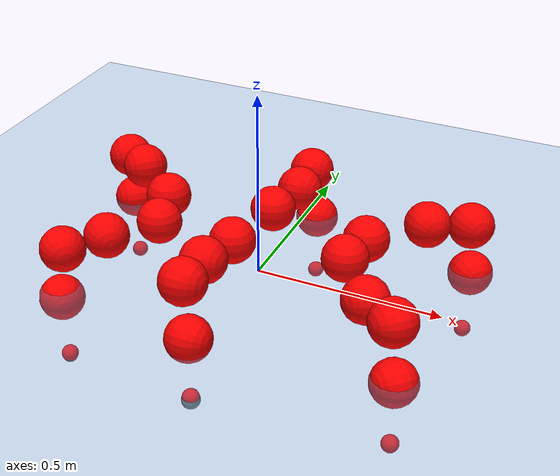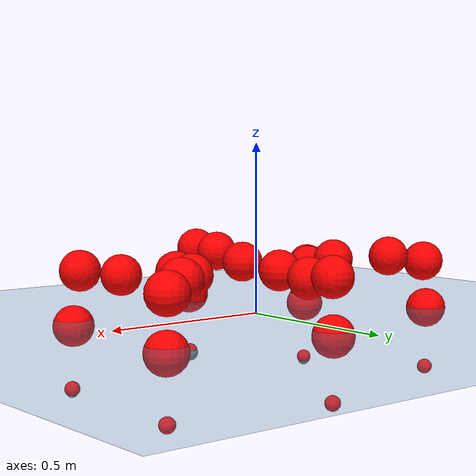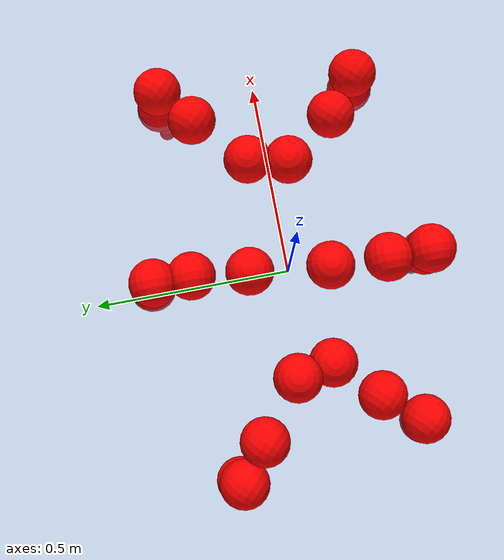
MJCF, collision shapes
<mujoco model="Golem">
  <compiler angle="radian" assetdir="assets" balanceinertia="true" inertiafromgeom="false"/>

  <option timestep="0.005" density="1.2" viscosity="2e-05"/>

  <size nkey="1"/>

  <visual>
    <quality shadowsize="8192"/>
    <map shadowclip="0.5"/>
  </visual>

  <default>
    <default class="/">
      <joint armature="0.01" damping="0.01" frictionloss="0.01"/>
      <geom contype="0" conaffinity="0" group="1" solref="-1000 -80"/>
      <site size="0.01 0.005 0.005" group="5"/>
      <general forcelimited="true" biastype="affine" gainprm="25" biasprm="0 -25 -0.5"/>
      <default class="visual">
        <geom type="mesh" group="2"/>
      </default>
      <default class="collision">
        <geom group="3"/>
      </default>
      <default class="foot">
        <geom size="0.01 0 0" condim="6" group="4" priority="1" solimp="0.015 1 0.01"/>
      </default>
      <default class="reward_collision_sphere">
        <geom group="5" rgba="1 0 0 1"/>
      </default>
    </default>
  </default>

  <asset>
    <texture type="skybox" colorspace="auto" name="//unnamed_texture_0" builtin="gradient" rgb1="0.95 0.95 0.95" rgb2="0.95 0.95 0.95" width="100" height="600"/>
    <texture type="2d" colorspace="auto" name="texplane" builtin="checker" rgb1="0.345 0.575 0.748" rgb2="0.345 0.575 0.748" markrgb="1 1 1" width="512" height="512"/>
    <material name="MatPlane" class="/" texture="texplane" texuniform="true" texrepeat="2 2" specular="0.9"/>
    <mesh name="body" class="/" file="body.stl" scale="0.001 0.001 0.001"/>
    <mesh name="coxa" class="/" file="coxa.stl" scale="0.001 0.001 0.001"/>
    <mesh name="femur" class="/" file="femur.stl" scale="0.001 0.001 0.001"/>
    <mesh name="tibia" class="/" file="tibia.stl" scale="0.001 0.001 0.001"/>
    <mesh name="tarsus" class="/" file="tarsus.stl" scale="0.001 0.001 0.001"/>
  </asset>

  <worldbody>
    <geom name="floor" class="/" size="100 100 0.125" type="plane" group="0" material="MatPlane"/>
    <light name="toplight_shadow" class="/" pos="0 0 5" dir="0.0990148 0.0990148 -0.990148" type="directional" ambient="0.04 0.04 0.04" diffuse="0.55 0.55 0.55" specular="0.12 0.12 0.12"/>
    <light name="toplight_fill" class="/" pos="0 0 5" dir="0.0990148 0.0990148 -0.990148" type="directional" castshadow="false" ambient="0.04 0.04 0.04" diffuse="0.3 0.3 0.3" specular="0.08 0.08 0.08"/>
    <body name="trunk" pos="-0.00749172 0.00120466 0.0176166" quat="0.999983 -0.00528614 0.000472423 0.00251937">
      <inertial pos="-0.000605801 -0.0154811 0.0158762" quat="0.998475 -0.0528799 -0.00351138 0.01545" mass="9.06299" diaginertia="0.117334 0.0100316 0.119199"/>
      <joint name="//unnamed_joint_0" type="free"/>
      <geom name="//unnamed_geom_1" class="/" pos="0 0 0.112767" quat="1 0 0 0" type="mesh" rgba="0.9 0.9 0.9 1" mesh="body"/>
      <site name="imu" class="/" pos="0.279453 0.000205551 0.0949954" size="0.0149633"/>
      <camera name="track" class="/" pos="0 -2.03625 0" quat="0.707107 0.707107 0 0" mode="trackcom"/>
      <camera name="ego_camera" class="/" pos="0.222156 0 0.176199" quat="-0.5 -0.5 0.5 0.5"/>
      <body name="coxa_RR" pos="-0.286858 -0.0939708 0.103007" quat="0.374155 0.00300419 -0.000474997 -0.927361">
        <inertial pos="0.0187893 0.0133265 -0.00584833" quat="0.996636 -0.0438135 -0.0665227 0.0192773" mass="0.608518" diaginertia="0.144049 0.0106511 0.221218"/>
        <joint name="coxa_joint_RR" class="/" pos="0 0 0" axis="-0.0316774 -0.0103482 -0.999445" range="-2.90442 2.98846" armature="0.0216115" damping="0" frictionloss="0.00265233"/>
        <geom name="//unnamed_geom_2" class="/" type="mesh" rgba="0.2 0.2 0.2 1" mesh="coxa"/>
        <geom name="//unnamed_geom_3" class="reward_collision_sphere" size="0.0598534" pos="-0.0512667 0 0"/>
        <body name="femur_RR" pos="0.0908117 0.00501993 -0.0122219" quat="0.499747 -0.500041 0.500452 0.499759">
          <inertial pos="0.00535659 0.0108305 -0.0175101" quat="1 -0.000467204 -0.0001382 0.000572041" mass="0.635626" diaginertia="0.131914 0.0102625 0.195671"/>
          <joint name="femur_joint_RR" class="/" pos="0 0 0" axis="-0.0815465 -0.0105728 -0.996613" stiffness="0.0411097" range="-3.32573 3.20248" armature="0.0233991" damping="0.007086" frictionloss="0.0221645"/>
          <geom name="//unnamed_geom_4" class="/" type="mesh" rgba="0.9 0.9 0.9 1" mesh="femur"/>
          <geom name="//unnamed_geom_5" class="reward_collision_sphere" size="0.0598534"/>
          <body name="tibia_RR" pos="0.00821061 -0.117148 0.0135129" quat="0.000295145 0.999999 -0.000839525 0.000882681">
            <inertial pos="0.0115778 -0.0166042 0.017593" quat="0.996548 0.0595223 0.012055 0.0565978" mass="0.825647" diaginertia="0.201552 0.01193 0.17664"/>
            <joint name="tibia_joint_RR" class="/" pos="0 0 0" axis="-0.0303799 0.00375066 0.999531" range="-3.12691 3.43054" armature="0.0179212" damping="0" frictionloss="0.0100196"/>
            <geom name="//unnamed_geom_6" class="/" type="mesh" rgba="0.2 0.2 0.2 1" mesh="tibia"/>
            <geom name="//unnamed_geom_7" class="reward_collision_sphere" size="0.0598534"/>
            <body name="tarsus_RR" pos="0.13979 0.0170601 -0.00674393" quat="0.999964 0.00741832 -0.0009341 -0.0041149">
              <inertial pos="0.0927472 0.0185257 -0.010717" quat="0.48596 0.499873 0.531808 0.48078" mass="0.684194" diaginertia="0.140754 0.00736172 0.134528"/>
              <joint name="tarsus_joint_RR" class="/" pos="0 0 0" axis="0.00405905 0.0124004 0.999915" stiffness="0.0174218" range="-3.17765 3.25657" armature="0.0135854" damping="0.0850482" frictionloss="0.0203592"/>
              <geom name="//unnamed_geom_8" class="/" type="mesh" rgba="0.9 0.9 0.9 1" mesh="tarsus"/>
              <geom name="foot_1" class="foot" size="0.0189605" pos="0.191396 0 0" quat="0 -0.707107 0 0.707107"/>
              <geom name="//unnamed_geom_10" class="reward_collision_sphere" size="0.0598534"/>
              <geom name="//unnamed_geom_11" class="reward_collision_sphere" size="0.022445" pos="0.183706 0 0"/>
              <site name="foot_1" class="foot" pos="0.191396 0 0" quat="0 -0.707107 0 0.707107" size="0.0149633"/>
            </body>
          </body>
        </body>
      </body>
      <body name="coxa_RM" pos="-0.0186063 -0.149293 0.125414" quat="0.706757 0.000652429 -0.00112687 -0.707456">
        <inertial pos="0.00141539 0.0132589 0.0195017" quat="0.998904 0.0346336 0.0108653 -0.0295396" mass="0.827157" diaginertia="0.205345 0.0156814 0.174551"/>
        <joint name="coxa_joint_RM" class="/" pos="0 0 0" axis="-0.000459548 0.000363193 -1" range="-3.17378 3.28072" armature="0.0241633" damping="0.0200651" frictionloss="0.00488007"/>
        <geom name="//unnamed_geom_12" class="/" type="mesh" rgba="0.2 0.2 0.2 1" mesh="coxa"/>
        <geom name="//unnamed_geom_13" class="reward_collision_sphere" size="0.0598534" pos="-0.0512667 0 0"/>
        <body name="femur_RM" pos="0.0875165 -0.0099695 0.0198148" quat="0.498209 -0.498997 0.507826 0.494876">
          <inertial pos="0.00822788 0.013389 -0.00432855" quat="0.995935 0.0524847 0.073194 -0.00105456" mass="0.605293" diaginertia="0.117567 0.0127884 0.18413"/>
          <joint name="femur_joint_RM" class="/" pos="0 0 0" axis="-0.0377476 -0.0321996 -0.998768" range="-2.81922 2.81735" armature="0.000276923" damping="0" frictionloss="0.0185335"/>
          <geom name="//unnamed_geom_14" class="/" type="mesh" rgba="0.9 0.9 0.9 1" mesh="femur"/>
          <geom name="//unnamed_geom_15" class="reward_collision_sphere" size="0.0598534"/>
          <body name="tibia_RM" pos="-0.00332221 -0.104227 0.00179028" quat="-0.000846464 0.999999 -0.00079442 0.000640505">
            <inertial pos="0.0100287 -0.00461421 0.0171939" quat="0.996893 -0.0564454 -0.0365285 -0.0410286" mass="0.977764" diaginertia="0.152072 0.0131784 0.160273"/>
            <joint name="tibia_joint_RM" class="/" pos="0 0 0" axis="0.0345391 0.0157917 0.999279" range="-2.82476 3.46178" armature="0.0275579" damping="0.0759745" frictionloss="0.0224661"/>
            <geom name="//unnamed_geom_16" class="/" type="mesh" rgba="0.2 0.2 0.2 1" mesh="tibia"/>
            <geom name="//unnamed_geom_17" class="reward_collision_sphere" size="0.0598534"/>
            <body name="tarsus_RM" pos="0.148686 0.0158961 -0.0185406" quat="0.999985 -0.000204737 -0.00184212 -0.00523488">
              <inertial pos="0.114029 -0.0048237 0.0113688" quat="0.494413 0.442193 0.543744 0.514163" mass="0.659669" diaginertia="0.158486 0.0109592 0.18507"/>
              <joint name="tarsus_joint_RM" class="/" pos="0 0 0" axis="0.0378119 -0.0101004 0.999234" stiffness="0.0508577" range="-3.25105 2.7427" armature="0.0152681" damping="0.101862" frictionloss="0.0207192"/>
              <geom name="//unnamed_geom_18" class="/" type="mesh" rgba="0.9 0.9 0.9 1" mesh="tarsus"/>
              <geom name="foot_2" class="foot" size="0.0243599" pos="0.191396 0 0" quat="0 -0.707107 0 0.707107"/>
              <geom name="//unnamed_geom_20" class="reward_collision_sphere" size="0.0598534"/>
              <geom name="//unnamed_geom_21" class="reward_collision_sphere" size="0.022445" pos="0.183706 0 0"/>
              <site name="foot_2" class="foot" pos="0.191396 0 0" quat="0 -0.707107 0 0.707107" size="0.0149633"/>
            </body>
          </body>
        </body>
      </body>
      <body name="coxa_RF" pos="0.299077 -0.0859421 0.120158" quat="0.923345 -0.00572075 -0.00623757 -0.383879">
        <inertial pos="-0.0173395 0.0170031 0.00772504" quat="0.999138 0.0068237 0.0368673 -0.0178261" mass="0.70363" diaginertia="0.111706 0.0113241 0.153301"/>
        <joint name="coxa_joint_RF" class="/" pos="0 0 0" axis="0.0566497 0.0602398 -0.996575" stiffness="0.0327333" range="-3.17278 3.28032" armature="0.017838" damping="0.0810479" frictionloss="0.0229876"/>
        <geom name="//unnamed_geom_22" class="/" type="mesh" rgba="0.2 0.2 0.2 1" mesh="coxa"/>
        <geom name="//unnamed_geom_23" class="reward_collision_sphere" size="0.0598534" pos="-0.0512667 0 0"/>
        <body name="femur_RF" pos="0.109842 -0.0198696 -0.0160852" quat="0.496531 -0.50206 0.494255 0.507054">
          <inertial pos="-0.00691203 0.00587789 0.011371" quat="0.997936 -0.063776 -0.00678829 0.00311289" mass="0.757683" diaginertia="0.166735 0.0114903 0.207398"/>
          <joint name="femur_joint_RF" class="/" pos="0 0 0" axis="-0.0372321 0.0291743 -0.998881" stiffness="0.0712414" range="-3.37995 2.88622" armature="0.0191347" damping="0" frictionloss="0.0183443"/>
          <geom name="//unnamed_geom_24" class="/" type="mesh" rgba="0.9 0.9 0.9 1" mesh="femur"/>
          <geom name="//unnamed_geom_25" class="reward_collision_sphere" size="0.0598534"/>
          <body name="tibia_RF" pos="-0.0104503 -0.116577 0.0107092" quat="-0.00330506 0.999993 -0.00195495 -0.000141344">
            <inertial pos="0.0051326 0.0154642 -0.00338572" quat="0.998476 0.00234867 0.0551188 0.00126506" mass="0.714496" diaginertia="0.187195 0.0143836 0.164892"/>
            <joint name="tibia_joint_RF" class="/" pos="0 0 0" axis="-0.0110398 0.016534 0.999802" stiffness="0.075822" range="-3.24908 3.45873" armature="0.0134514" damping="0.107106" frictionloss="0.0154637"/>
            <geom name="//unnamed_geom_26" class="/" type="mesh" rgba="0.2 0.2 0.2 1" mesh="tibia"/>
            <geom name="//unnamed_geom_27" class="reward_collision_sphere" size="0.0598534"/>
            <body name="tarsus_RF" pos="0.159635 0.0170929 -0.00392937" quat="0.999974 -8.75821e-05 0.00177531 0.00692386">
              <inertial pos="0.0958892 -0.00516185 -0.00873052" quat="0.496217 0.504135 0.501796 0.497812" mass="0.686727" diaginertia="0.11752 0.00803799 0.149504"/>
              <joint name="tarsus_joint_RF" class="/" pos="0 0 0" axis="0.0370662 0.00853408 0.999276" stiffness="0.00964114" range="-3.06036 3.29875" armature="0.00945736" damping="0.0386482" frictionloss="0.0200684"/>
              <geom name="//unnamed_geom_28" class="/" type="mesh" rgba="0.9 0.9 0.9 1" mesh="tarsus"/>
              <geom name="foot_3" class="foot" size="0.0174148" pos="0.191396 0 0" quat="0 -0.707107 0 0.707107"/>
              <geom name="//unnamed_geom_30" class="reward_collision_sphere" size="0.0598534"/>
              <geom name="//unnamed_geom_31" class="reward_collision_sphere" size="0.022445" pos="0.183706 0 0"/>
              <site name="foot_3" class="foot" pos="0.191396 0 0" quat="0 -0.707107 0 0.707107" size="0.0149633"/>
            </body>
          </body>
        </body>
      </body>
      <body name="coxa_LR" pos="-0.307072 0.0696595 0.128567" quat="0.382573 -1.55413e-05 -0.000125069 0.923925">
        <inertial pos="-0.000837144 0.010296 0.0149826" quat="0.997398 0.042513 0.0508826 -0.0283007" mass="0.9391" diaginertia="0.178199 0.010887 0.227218"/>
        <joint name="coxa_joint_LR" class="/" pos="0 0 0" axis="-0.0176412 -0.0764063 -0.996921" range="-3.06984 3.28028" armature="0.00664563" damping="0" frictionloss="0.00359349"/>
        <geom name="//unnamed_geom_32" class="/" type="mesh" rgba="0.2 0.2 0.2 1" mesh="coxa"/>
        <geom name="//unnamed_geom_33" class="reward_collision_sphere" size="0.0598534" pos="-0.0512667 0 0"/>
        <body name="femur_LR" pos="0.116643 0.0182344 0.00934837" quat="0.499601 -0.501568 0.494564 0.504217">
          <inertial pos="0.00531005 0.0114302 0.0188028" quat="0.998136 0.0420139 0.0269145 0.0351454" mass="0.687983" diaginertia="0.175881 0.0132885 0.216314"/>
          <joint name="femur_joint_LR" class="/" pos="0 0 0" axis="0.0770474 0.0552844 0.995494" range="-3.19083 3.13852" armature="0.00498033" damping="0" frictionloss="0.0199666"/>
          <geom name="//unnamed_geom_34" class="/" type="mesh" rgba="0.9 0.9 0.9 1" mesh="femur"/>
          <geom name="//unnamed_geom_35" class="reward_collision_sphere" size="0.0598534"/>
          <body name="tibia_LR" pos="0.0152836 -0.107262 0.0135742" quat="-0.00232416 0.999996 0.00144544 -0.000754908">
            <inertial pos="0.00638827 -0.0166147 0.00502366" quat="0.99914 -0.0324557 -0.0244781 0.0081669" mass="0.550815" diaginertia="0.148833 0.00958443 0.113505"/>
            <joint name="tibia_joint_LR" class="/" pos="0 0 0" axis="-0.0984556 -0.00730171 -0.995115" stiffness="0.0276868" range="-3.45439 3.53717" armature="0.000120816" damping="0.0177308" frictionloss="0.0044334"/>
            <geom name="//unnamed_geom_36" class="/" type="mesh" rgba="0.2 0.2 0.2 1" mesh="tibia"/>
            <geom name="//unnamed_geom_37" class="reward_collision_sphere" size="0.0598534"/>
            <body name="tarsus_LR" pos="0.142983 0.0102899 0.0103476" quat="0.99999 0.00176513 -0.00349317 0.00200101">
              <inertial pos="0.0838817 0.0071067 0.0199365" quat="0.501376 0.500736 0.495472 0.502387" mass="0.657716" diaginertia="0.126506 0.0126533 0.163192"/>
              <joint name="tarsus_joint_LR" class="/" pos="0 0 0" axis="0.00450156 -0.00471269 -0.999979" stiffness="0.0373079" range="-3.40496 3.394" armature="0.0265775" damping="0" frictionloss="0.0140233"/>
              <geom name="//unnamed_geom_38" class="/" type="mesh" rgba="0.9 0.9 0.9 1" mesh="tarsus"/>
              <geom name="foot_4" class="foot" size="0.0135509" pos="0.191396 0 0" quat="0.707107 0 -0.707107 0"/>
              <geom name="//unnamed_geom_40" class="reward_collision_sphere" size="0.0598534"/>
              <geom name="//unnamed_geom_41" class="reward_collision_sphere" size="0.022445" pos="0.183706 0 0"/>
              <site name="foot_4" class="foot" pos="0.191396 0 0" quat="0.707107 0 -0.707107 0" size="0.0149633"/>
            </body>
          </body>
        </body>
      </body>
      <body name="coxa_LM" pos="0.00472934 0.149341 0.119815" quat="0.704645 0.00250563 5.2317e-05 0.709556">
        <inertial pos="-0.000456336 0.0173207 -0.0192167" quat="0.998255 -0.0507594 0.0277623 -0.0118435" mass="0.617084" diaginertia="0.181173 0.0121244 0.175964"/>
        <joint name="coxa_joint_LM" class="/" pos="0 0 0" axis="-0.0765652 0.0183155 -0.996896" stiffness="0.0408407" range="-3.03239 3.34143" armature="0.0296362" damping="0" frictionloss="0.0138802"/>
        <geom name="//unnamed_geom_42" class="/" type="mesh" rgba="0.2 0.2 0.2 1" mesh="coxa"/>
        <geom name="//unnamed_geom_43" class="reward_collision_sphere" size="0.0598534" pos="-0.0512667 0 0"/>
        <body name="femur_LM" pos="0.090671 -0.0179372 -0.00696652" quat="0.500886 -0.500866 0.499704 0.49854">
          <inertial pos="0.0186056 -0.0132648 0.0135809" quat="0.999669 0.0170371 0.00585773 -0.0183633" mass="0.704392" diaginertia="0.199315 0.0112438 0.185114"/>
          <joint name="femur_joint_LM" class="/" pos="0 0 0" axis="0.0852907 -0.0229354 0.996092" range="-3.11619 3.18083" armature="0.0201836" damping="0.0450601" frictionloss="0.00344157"/>
          <geom name="//unnamed_geom_44" class="/" type="mesh" rgba="0.9 0.9 0.9 1" mesh="femur"/>
          <geom name="//unnamed_geom_45" class="reward_collision_sphere" size="0.0598534"/>
          <body name="tibia_LM" pos="-0.0121876 -0.0937309 0.00132535" quat="-0.0023133 0.999989 -0.00135018 -0.00379487">
            <inertial pos="-0.00806837 -0.00426995 -0.0146973" quat="0.997031 -0.00214714 -0.0444694 0.0628273" mass="0.893354" diaginertia="0.141392 0.0113442 0.221332"/>
            <joint name="tibia_joint_LM" class="/" pos="0 0 0" axis="0.0406859 -0.0146881 -0.999064" range="-3.26576 2.80245" armature="0.0100941" damping="0.0514169" frictionloss="0.00650846"/>
            <geom name="//unnamed_geom_46" class="/" type="mesh" rgba="0.2 0.2 0.2 1" mesh="tibia"/>
            <geom name="//unnamed_geom_47" class="reward_collision_sphere" size="0.0598534"/>
            <body name="tarsus_LM" pos="0.159127 0.0170034 0.0116251" quat="1 -0.000614099 -0.000486796 -0.000184721">
              <inertial pos="0.0845861 0.0100877 0.00984431" quat="0.49986 0.500157 0.501472 0.498506" mass="0.652371" diaginertia="0.137623 0.0103711 0.147796"/>
              <joint name="tarsus_joint_LM" class="/" pos="0 0 0" axis="-0.0101154 -0.00559595 -0.999933" stiffness="0.0448834" range="-3.0368 3.23174" armature="0.0122699" damping="0.0236714" frictionloss="0.0216734"/>
              <geom name="//unnamed_geom_48" class="/" type="mesh" rgba="0.9 0.9 0.9 1" mesh="tarsus"/>
              <geom name="foot_5" class="foot" size="0.0153495" pos="0.191396 0 0" quat="0.707107 0 -0.707107 0"/>
              <geom name="//unnamed_geom_50" class="reward_collision_sphere" size="0.0598534"/>
              <geom name="//unnamed_geom_51" class="reward_collision_sphere" size="0.022445" pos="0.183706 0 0"/>
              <site name="foot_5" class="foot" pos="0.191396 0 0" quat="0.707107 0 -0.707107 0" size="0.0149633"/>
            </body>
          </body>
        </body>
      </body>
      <body name="coxa_LF" pos="0.318494 0.0864212 0.123124" quat="0.924982 -0.000574471 -0.00190098 0.380005">
        <inertial pos="-0.0150598 0.00490278 -0.00969742" quat="0.996072 0.00334689 -0.0264852 0.0844213" mass="0.629955" diaginertia="0.109784 0.00975942 0.169803"/>
        <joint name="coxa_joint_LF" class="/" pos="0 0 0" axis="-0.0133916 0.00322204 -0.999905" range="-3.27537 3.47584" armature="0.0236005" damping="0.00986439" frictionloss="0.0191094"/>
        <geom name="//unnamed_geom_52" class="/" type="mesh" rgba="0.2 0.2 0.2 1" mesh="coxa"/>
        <geom name="//unnamed_geom_53" class="reward_collision_sphere" size="0.0598534" pos="-0.0512667 0 0"/>
        <body name="femur_LF" pos="0.11894 -0.00241402 0.00804127" quat="0.495962 -0.500802 0.500944 0.502269">
          <inertial pos="0.015868 -0.0146325 0.00350872" quat="0.998527 -0.0239024 -0.0297749 0.0385593" mass="0.747901" diaginertia="0.174214 0.010162 0.173569"/>
          <joint name="femur_joint_LF" class="/" pos="0 0 0" axis="0.0199036 0.0855599 0.996134" stiffness="0.00200222" range="-2.79797 3.03323" armature="0.0138553" damping="0.0700995" frictionloss="0.0144617"/>
          <geom name="//unnamed_geom_54" class="/" type="mesh" rgba="0.9 0.9 0.9 1" mesh="femur"/>
          <geom name="//unnamed_geom_55" class="reward_collision_sphere" size="0.0598534"/>
          <body name="tibia_LF" pos="0.0181182 -0.120282 -0.0171176" quat="0.00189324 0.999974 0.00105047 0.00690947">
            <inertial pos="0.0155916 0.00153658 0.00683434" quat="0.995131 -0.0415076 -0.00108473 -0.0893902" mass="0.516667" diaginertia="0.171154 0.0100733 0.190918"/>
            <joint name="tibia_joint_LF" class="/" pos="0 0 0" axis="-0.0303168 -0.0209353 -0.999321" range="-3.17019 2.91181" armature="0.0123391" damping="0.0839595" frictionloss="0.0204456"/>
            <geom name="//unnamed_geom_56" class="/" type="mesh" rgba="0.2 0.2 0.2 1" mesh="tibia"/>
            <geom name="//unnamed_geom_57" class="reward_collision_sphere" size="0.0598534"/>
            <body name="tarsus_LF" pos="0.149168 0.0156178 0.000895435" quat="0.999994 -0.0025036 -0.00195655 -0.00120897">
              <inertial pos="0.115504 0.00827831 0.0129964" quat="0.509516 0.48815 0.528342 0.472184" mass="0.994646" diaginertia="0.187666 0.0136184 0.22232"/>
              <joint name="tarsus_joint_LF" class="/" pos="0 0 0" axis="-0.0499391 -0.0154931 -0.998632" stiffness="0.0639979" range="-2.96329 2.89531" armature="0.0242458" damping="0" frictionloss="0.0116661"/>
              <geom name="//unnamed_geom_58" class="/" type="mesh" rgba="0.9 0.9 0.9 1" mesh="tarsus"/>
              <geom name="foot_6" class="foot" size="0.00699745" pos="0.191396 0 0" quat="0.707107 0 -0.707107 0"/>
              <geom name="//unnamed_geom_60" class="reward_collision_sphere" size="0.0598534"/>
              <geom name="//unnamed_geom_61" class="reward_collision_sphere" size="0.022445" pos="0.183706 0 0"/>
              <site name="foot_6" class="foot" pos="0.191396 0 0" quat="0.707107 0 -0.707107 0" size="0.0149633"/>
            </body>
          </body>
        </body>
      </body>
    </body>
  </worldbody>

  <contact>
    <pair class="/" geom1="floor" geom2="foot_1" name="//unnamed_contact_0"/>
    <pair class="/" geom1="floor" geom2="foot_2" name="//unnamed_contact_1"/>
    <pair class="/" geom1="floor" geom2="foot_3" name="//unnamed_contact_2"/>
    <pair class="/" geom1="floor" geom2="foot_4" name="//unnamed_contact_3"/>
    <pair class="/" geom1="floor" geom2="foot_5" name="//unnamed_contact_4"/>
    <pair class="/" geom1="floor" geom2="foot_6" name="//unnamed_contact_5"/>
  </contact>

  <actuator>
    <general name="coxa_joint_RR" class="/" joint="coxa_joint_RR" forcerange="-13.1249 13.1249" gainprm="29.9134" biasprm="0 -29.9134 -0.787182"/>
    <general name="femur_joint_RR" class="/" joint="femur_joint_RR" forcerange="-5.39686 5.39686" gainprm="29.9134" biasprm="0 -29.9134 -0.787182"/>
    <general name="tibia_joint_RR" class="/" joint="tibia_joint_RR" forcerange="-17.6862 17.6862" gainprm="29.9134" biasprm="0 -29.9134 -0.787182"/>
    <general name="tarsus_joint_RR" class="/" joint="tarsus_joint_RR" forcerange="-6.54499 6.54499" gainprm="29.9134" biasprm="0 -29.9134 -0.787182"/>
    <general name="coxa_joint_RM" class="/" joint="coxa_joint_RM" forcerange="-2.7874 2.7874" gainprm="29.9134" biasprm="0 -29.9134 -0.787182"/>
    <general name="femur_joint_RM" class="/" joint="femur_joint_RM" forcerange="-12.9962 12.9962" gainprm="29.9134" biasprm="0 -29.9134 -0.787182"/>
    <general name="tibia_joint_RM" class="/" joint="tibia_joint_RM" forcerange="-6.44926 6.44926" gainprm="29.9134" biasprm="0 -29.9134 -0.787182"/>
    <general name="tarsus_joint_RM" class="/" joint="tarsus_joint_RM" forcerange="-17.7146 17.7146" gainprm="29.9134" biasprm="0 -29.9134 -0.787182"/>
    <general name="coxa_joint_RF" class="/" joint="coxa_joint_RF" forcerange="-4.44842 4.44842" gainprm="29.9134" biasprm="0 -29.9134 -0.787182"/>
    <general name="femur_joint_RF" class="/" joint="femur_joint_RF" forcerange="-10.9424 10.9424" gainprm="29.9134" biasprm="0 -29.9134 -0.787182"/>
    <general name="tibia_joint_RF" class="/" joint="tibia_joint_RF" forcerange="-12.5658 12.5658" gainprm="29.9134" biasprm="0 -29.9134 -0.787182"/>
    <general name="tarsus_joint_RF" class="/" joint="tarsus_joint_RF" forcerange="-10.8736 10.8736" gainprm="29.9134" biasprm="0 -29.9134 -0.787182"/>
    <general name="coxa_joint_LR" class="/" joint="coxa_joint_LR" forcerange="-3.72151 3.72151" gainprm="29.9134" biasprm="0 -29.9134 -0.787182"/>
    <general name="femur_joint_LR" class="/" joint="femur_joint_LR" forcerange="-11.24 11.24" gainprm="29.9134" biasprm="0 -29.9134 -0.787182"/>
    <general name="tibia_joint_LR" class="/" joint="tibia_joint_LR" forcerange="-4.85943 4.85943" gainprm="29.9134" biasprm="0 -29.9134 -0.787182"/>
    <general name="tarsus_joint_LR" class="/" joint="tarsus_joint_LR" forcerange="-3.45089 3.45089" gainprm="29.9134" biasprm="0 -29.9134 -0.787182"/>
    <general name="coxa_joint_LM" class="/" joint="coxa_joint_LM" forcerange="-17.5849 17.5849" gainprm="29.9134" biasprm="0 -29.9134 -0.787182"/>
    <general name="femur_joint_LM" class="/" joint="femur_joint_LM" forcerange="-6.9965 6.9965" gainprm="29.9134" biasprm="0 -29.9134 -0.787182"/>
    <general name="tibia_joint_LM" class="/" joint="tibia_joint_LM" forcerange="-3.8883 3.8883" gainprm="29.9134" biasprm="0 -29.9134 -0.787182"/>
    <general name="tarsus_joint_LM" class="/" joint="tarsus_joint_LM" forcerange="-2.93414 2.93414" gainprm="29.9134" biasprm="0 -29.9134 -0.787182"/>
    <general name="coxa_joint_LF" class="/" joint="coxa_joint_LF" forcerange="-16.8905 16.8905" gainprm="29.9134" biasprm="0 -29.9134 -0.787182"/>
    <general name="femur_joint_LF" class="/" joint="femur_joint_LF" forcerange="-16.7734 16.7734" gainprm="29.9134" biasprm="0 -29.9134 -0.787182"/>
    <general name="tibia_joint_LF" class="/" joint="tibia_joint_LF" forcerange="-14.9278 14.9278" gainprm="29.9134" biasprm="0 -29.9134 -0.787182"/>
    <general name="tarsus_joint_LF" class="/" joint="tarsus_joint_LF" forcerange="-15.7101 15.7101" gainprm="29.9134" biasprm="0 -29.9134 -0.787182"/>
  </actuator>

  <sensor>
    <gyro site="imu" name="imu_angular_velocity"/>
    <velocimeter site="imu" name="imu_linear_velocity"/>
    <framelinvel objtype="site" objname="foot_1" name="foot_1_global_linear_velocity"/>
    <framelinvel objtype="site" objname="foot_2" name="foot_2_global_linear_velocity"/>
    <framelinvel objtype="site" objname="foot_3" name="foot_3_global_linear_velocity"/>
    <framelinvel objtype="site" objname="foot_4" name="foot_4_global_linear_velocity"/>
    <framelinvel objtype="site" objname="foot_5" name="foot_5_global_linear_velocity"/>
    <framelinvel objtype="site" objname="foot_6" name="foot_6_global_linear_velocity"/>
  </sensor>

  <keyframe>
    <key name="home" qpos="0 0 0.1457 1 0 0 0 0 0 0 0 0 0 0 0 0 0 0 0 0 0 0 0 0 0 0 0 0 0 0 0"/>
  </keyframe>
</mujoco>
